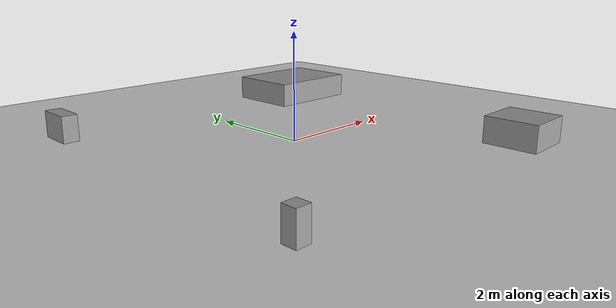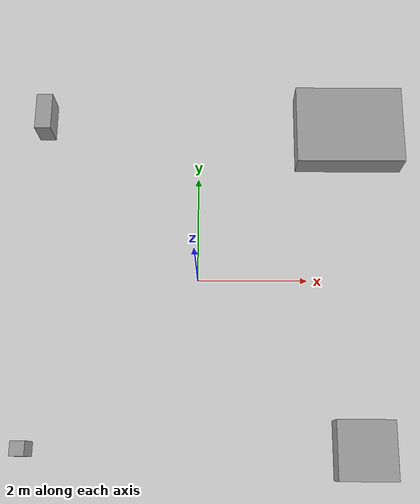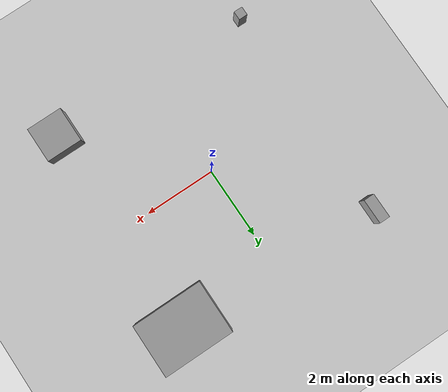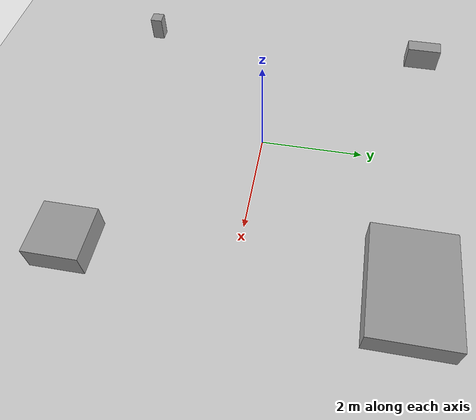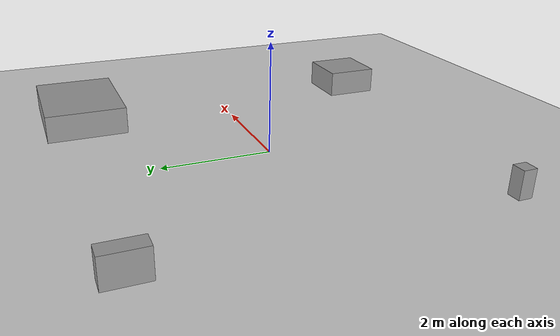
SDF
<sdf version="1.6">
 <world name="default">
  <plugin name="gazebo_ros_state" filename="libgazebo_ros_state.so">
   <ros><namespace>/gazebo</namespace></ros>
   <update_rate>1.0</update_rate>
  </plugin>
  <include><uri>model://ground_plane</uri></include>
  <include><uri>model://sun</uri></include>
  <scene><shadows>false</shadows></scene>
  <physics type="ode">
   <real_time_update_rate>2000.0</real_time_update_rate>
   <max_step_size>0.001</max_step_size>
   <real_time_factor>2</real_time_factor>
   <ode>
    <solver>
     <type>quick</type>
     <iters>150</iters>
     <precon_iters>0</precon_iters>
     <sor>1.400000</sor>
     <use_dynamic_moi_rescaling>1</use_dynamic_moi_rescaling>
    </solver>
    <constraints>
     <cfm>0.00001</cfm>
     <erp>0.2</erp>
     <contact_max_correcting_vel>2000.000000</contact_max_correcting_vel>
     <contact_surface_layer>0.01000</contact_surface_layer>
    </constraints>
   </ode>
  </physics>
  <model name="obstacle1">
   <pose>2.86 -3.0 0 0 0 0</pose>
   <static>true</static>
   <link name="link">
    <inertial>
     <mass>1</mass>
     <inertia>
      <ixx>0.166667</ixx>
      <ixy>0</ixy>
      <ixz>0</ixz>
      <iyy>0.166667</iyy>
      <iyz>0</iyz>
      <izz>0.166667</izz>
     </inertia>
    </inertial>
    <collision name="collision"><geometry><box><size>1 1 1</size></box></geometry></collision>
    <visual name="visual">
     <geometry><box><size>1 1 1</size></box></geometry>
     <material>
      <script><uri>file://media/materials/scripts/gazebo.material</uri><name>Gazebo/Grey</name></script>
     </material>
    </visual>
   </link>
  </model>
  <model name="obstacle2">
   <pose>-2.93 3.17 0 0 0 0</pose>
   <static>true</static>
   <link name="link">
    <inertial>
     <mass>1</mass>
     <inertia>
      <ixx>0.166667</ixx>
      <ixy>0</ixy>
      <ixz>0</ixz>
      <iyy>0.166667</iyy>
      <iyz>0</iyz>
      <izz>0.166667</izz>
     </inertia>
    </inertial>
    <collision name="collision"><geometry><box><size>0.3 0.7 1</size></box></geometry></collision>
    <visual name="visual">
     <geometry><box><size>0.3 0.7 1</size></box></geometry>
     <material>
      <script><uri>file://media/materials/scripts/gazebo.material</uri><name>Gazebo/Grey</name></script>
     </material>
    </visual>
   </link>
  </model>
  <model name="obstacle3">
   <pose>-2.93 -3.0 0 0 0 0</pose>
   <static>true</static>
   <link name="link">
    <inertial>
     <mass>1</mass>
     <inertia>
      <ixx>0.166667</ixx>
      <ixy>0</ixy>
      <ixz>0</ixz>
      <iyy>0.166667</iyy>
      <iyz>0</iyz>
      <izz>0.166667</izz>
     </inertia>
    </inertial>
    <collision name="collision"><geometry><box><size>0.25 0.25 1</size></box></geometry></collision>
    <visual name="visual">
     <geometry><box><size>0.25 0.25 1</size></box></geometry>
     <material>
      <script><uri>file://media/materials/scripts/gazebo.material</uri><name>Gazebo/Grey</name></script>
     </material>
    </visual>
   </link>
  </model>
  <model name="obstacle4">
   <pose>2.83 2.93 0 0 0 0</pose>
   <static>true</static>
   <link name="link">
    <inertial>
     <mass>1</mass>
     <inertia>
      <ixx>0.166667</ixx>
      <ixy>0</ixy>
      <ixz>0</ixz>
      <iyy>0.166667</iyy>
      <iyz>0</iyz>
      <izz>0.166667</izz>
     </inertia>
    </inertial>
    <collision name="collision"><geometry><box><size>2 1.5 1</size></box></geometry></collision>
    <visual name="visual">
     <geometry><box><size>2 1.5 1</size></box></geometry>
     <material>
      <script><uri>file://media/materials/scripts/gazebo.material</uri><name>Gazebo/Grey</name></script>
     </material>
    </visual>
   </link>
  </model>
 </world>
</sdf>
